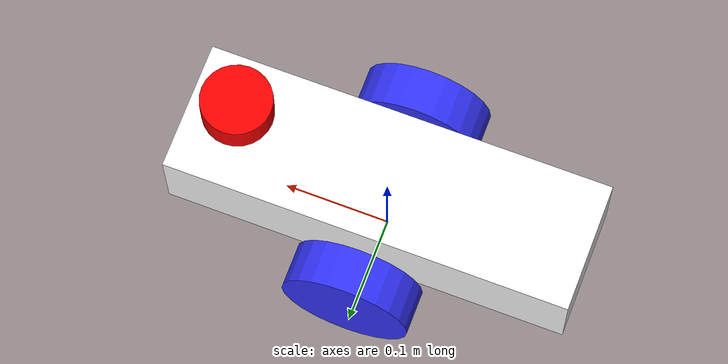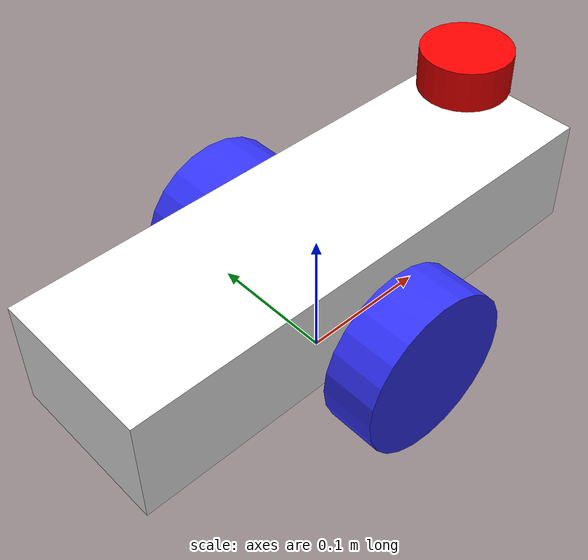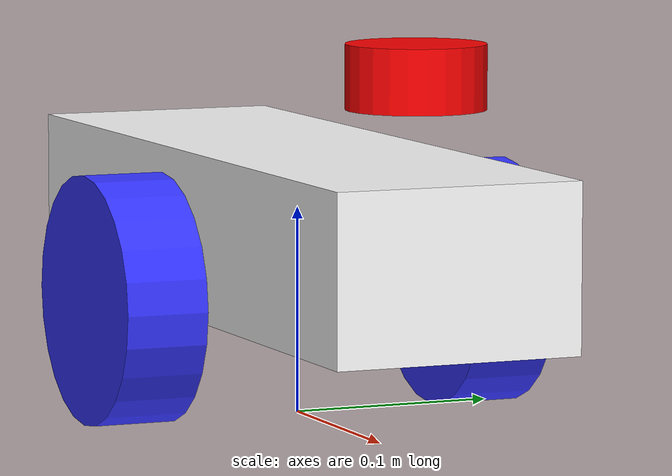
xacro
<?xml version="1.0"?>
<robot xmlns:xacro="http://www.ros.org/wiki/xacro" >

    <xacro:include filename="inertial_macros.xacro"/>
    <xacro:include filename="lidar.xacro"/>

    <material name="white">
        <color rgba="1 1 1 1" />
    </material>

    <material name="orange">
        <color rgba="1 0.3 0.1 1"/>
    </material>

    <material name="blue">
        <color rgba="0.2 0.2 1 1"/>
    </material>

    <material name="black">
        <color rgba="0 0 0 1"/>
    </material>

    <material name="red">
        <color rgba="1 0 0 1"/>
    </material>

    <!-- BASE LINK -->

    <link name="base_link"></link>

    <joint name="base_footprint_joint" type="fixed">
        <parent link="base_link"/>
        <child link="base_footprint"/>
        <origin xyz="0 0 0" rpy="0 0 0"/>
    </joint>

    <link name="base_footprint"></link>

    <!-- CHASSIS LINK -->

    <joint name="chassis_joint" type="fixed">
        <parent link="base_link"/>
        <child link="chassis"/>
        <origin xyz="0 0 0.09"/>
    </joint>

    <link name="chassis">
        <visual>
            <origin xyz="0 0 0"/>
            <geometry>
                <box size="0.38 0.12 0.08"/>
            </geometry>
            <material name="white"/>
        </visual>
        <collision>
            <origin xyz="0 0 0"/>
            <geometry>
                <box size="0.38 0.12 0.08"/>
            </geometry>
        </collision>
        <xacro:inertial_box mass="0.5" x="0.3" y="0.3" z="0.15">
            <origin xyz="0.15 0 0.09" rpy="0 0 0"/>
        </xacro:inertial_box>
    </link>

    <!-- LEFT WHEEL LINK -->

    <joint name="left_wheel_joint_2" type="continuous">
        <parent link="base_link"/>
        <child link="left_wheel_2"/>
        <origin xyz="0 0.09 0.06" rpy="-${pi/2} 0 0" />
        <axis xyz="0 0 1"/>
    </joint>

    <link name="left_wheel_2">
        <visual>
            <geometry>
                <cylinder radius="0.06" length="0.04"/>
            </geometry>
            <material name="blue"/>
        </visual>
        <collision>
            <geometry>
                <cylinder radius="0.06" length="0.04"/>
            </geometry>
        </collision>
        <xacro:inertial_cylinder mass="0.1" length="0.04" radius="0.06">
            <origin xyz="0 0 0" rpy="0 0 0"/>
        </xacro:inertial_cylinder>
    </link>

    <!-- RIGHT WHEEL LINK -->

    <joint name="right_wheel_joint_2" type="continuous">
        <parent link="base_link"/>
        <child link="right_wheel_2"/>
        <origin xyz="0 -0.09 0.06" rpy="${pi/2} 0 0" />
        <axis xyz="0 0 -1"/>
    </joint>

    <link name="right_wheel_2">
        <visual>
            <geometry>
                <cylinder radius="0.06" length="0.04"/>
            </geometry>
            <material name="blue"/>
        </visual>
        <collision>
            <geometry>
                <cylinder radius="0.06" length="0.04"/>
            </geometry>
        </collision>
        <xacro:inertial_cylinder mass="0.1" length="0.04" radius="0.06">
            <origin xyz="0 0 0" rpy="0 0 0"/>
        </xacro:inertial_cylinder>
    </link>

</robot>

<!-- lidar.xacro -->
<robot xmlns:xacro="http://www.ros.org/wiki/xacro">

    <joint name="laser_joint" type="fixed">
        <parent link="base_link"/>
        <child link="laser_frame"/>
        <origin xyz="0.14 0 0.175" rpy="0 0 0"/>
    </joint>

    <link name="laser_frame">
        <visual>
            <geometry>
                <cylinder radius="0.0325" length="0.03"/>
            </geometry>
            <material name="red"/>
        </visual>
        <collision>
            <geometry>
                <cylinder radius="0.05" length="0.04"/>
            </geometry>
        </collision>
        <xacro:inertial_cylinder mass="0.1" length="0.04" radius="0.05">
            <origin xyz="0 0 0" rpy="0 0 0"/>
        </xacro:inertial_cylinder>
    </link>

    <gazebo reference="laser_frame">
        <material>Gazebo/Red</material>
        <sensor name="laser" type="ray">
            <pose> 0 0 0 0 0 0 </pose>
            <visualize>true</visualize>
            <update_rate>10</update_rate>
            <ray>
                <scan>
                    <horizontal>
                        <samples>360</samples>
                        <min_angle>-3.14</min_angle>
                        <max_angle>3.14</max_angle>
                    </horizontal>
                </scan>
                <range>
                    <min>0.3</min>
                    <max>12</max>
                </range>
            </ray>
            <plugin name="laser_controller" filename="libgazebo_ros_ray_sensor.so">
                <ros>
                    <argument>~/out:=scan</argument>
                </ros>
                <output_type>sensor_msgs/LaserScan</output_type>
                <frame_name>laser_frame</frame_name>
            </plugin>
        </sensor>

    </gazebo>
</robot>
